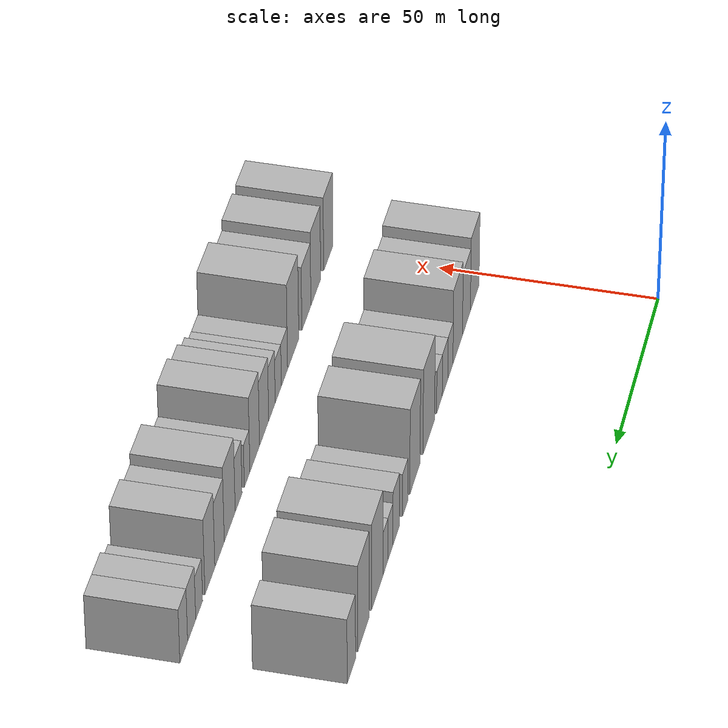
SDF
<sdf version="1.6">
 <world name="default">
  <model name="building_35">
   <static>1</static>
   <pose>50.0000 8.7507 0 0.000000 0.000000 0.000000</pose>
   <link name="link">
    <pose>0 0 10.50 0 0 0</pose>
    <collision name="collision"><geometry><box><size>20.0000 9.2780 21.0000</size></box></geometry></collision>
    <visual name="visual">
     <cast_shadows>0</cast_shadows>
     <geometry><box><size>20.0000 9.2780 21.0000</size></box></geometry>
     <material>
      <script>
       <uri>model://HANNAS_wall/materials/scripts</uri>
       <uri>model://HANNAS_wall/materials/textures</uri>
       <name>vrc/HANNAS_wall</name>
      </script>
     </material>
    </visual>
   </link>
  </model>
  <model name="building_36">
   <static>1</static>
   <pose>50.0000 17.6079 0 0.000000 0.000000 0.000000</pose>
   <link name="link">
    <pose>0 0 9.00 0 0 0</pose>
    <collision name="collision"><geometry><box><size>20.0000 8.4364 18.0000</size></box></geometry></collision>
    <visual name="visual">
     <cast_shadows>0</cast_shadows>
     <geometry><box><size>20.0000 8.4364 18.0000</size></box></geometry>
     <material>
      <script>
       <uri>model://HANNAS_wall/materials/scripts</uri>
       <uri>model://HANNAS_wall/materials/textures</uri>
       <name>vrc/HANNAS_wall</name>
      </script>
     </material>
    </visual>
   </link>
  </model>
  <model name="building_37">
   <static>1</static>
   <pose>50.0000 26.8337 0 0.000000 0.000000 0.000000</pose>
   <link name="link">
    <pose>0 0 10.50 0 0 0</pose>
    <collision name="collision"><geometry><box><size>20.0000 10.0153 21.0000</size></box></geometry></collision>
    <visual name="visual">
     <cast_shadows>0</cast_shadows>
     <geometry><box><size>20.0000 10.0153 21.0000</size></box></geometry>
     <material>
      <script>
       <uri>model://HANNAS_wall/materials/scripts</uri>
       <uri>model://HANNAS_wall/materials/textures</uri>
       <name>vrc/HANNAS_wall</name>
      </script>
     </material>
    </visual>
   </link>
  </model>
  <model name="building_38">
   <static>1</static>
   <pose>50.0000 34.4744 0 0.000000 0.000000 0.000000</pose>
   <link name="link">
    <pose>0 0 6.00 0 0 0</pose>
    <collision name="collision"><geometry><box><size>20.0000 5.2660 12.0000</size></box></geometry></collision>
    <visual name="visual">
     <cast_shadows>0</cast_shadows>
     <geometry><box><size>20.0000 5.2660 12.0000</size></box></geometry>
     <material>
      <script>
       <uri>model://HANNAS_wall/materials/scripts</uri>
       <uri>model://HANNAS_wall/materials/textures</uri>
       <name>vrc/HANNAS_wall</name>
      </script>
     </material>
    </visual>
   </link>
  </model>
  <model name="building_39">
   <static>1</static>
   <pose>50.0000 40.0444 0 0.000000 0.000000 0.000000</pose>
   <link name="link">
    <pose>0 0 6.00 0 0 0</pose>
    <collision name="collision"><geometry><box><size>20.0000 5.8741 12.0000</size></box></geometry></collision>
    <visual name="visual">
     <cast_shadows>0</cast_shadows>
     <geometry><box><size>20.0000 5.8741 12.0000</size></box></geometry>
     <material>
      <script>
       <uri>model://HANNAS_wall/materials/scripts</uri>
       <uri>model://HANNAS_wall/materials/textures</uri>
       <name>vrc/HANNAS_wall</name>
      </script>
     </material>
    </visual>
   </link>
  </model>
  <model name="building_40">
   <static>1</static>
   <pose>50.0000 45.8900 0 0.000000 0.000000 0.000000</pose>
   <link name="link">
    <pose>0 0 6.00 0 0 0</pose>
    <collision name="collision"><geometry><box><size>20.0000 5.8171 12.0000</size></box></geometry></collision>
    <visual name="visual">
     <cast_shadows>0</cast_shadows>
     <geometry><box><size>20.0000 5.8171 12.0000</size></box></geometry>
     <material>
      <script>
       <uri>model://HANNAS_wall/materials/scripts</uri>
       <uri>model://HANNAS_wall/materials/textures</uri>
       <name>vrc/HANNAS_wall</name>
      </script>
     </material>
    </visual>
   </link>
  </model>
  <model name="building_41">
   <static>1</static>
   <pose>50.0000 56.6589 0 0.000000 0.000000 0.000000</pose>
   <link name="link">
    <pose>0 0 12.00 0 0 0</pose>
    <collision name="collision"><geometry><box><size>20.0000 11.7206 24.0000</size></box></geometry></collision>
    <visual name="visual">
     <cast_shadows>0</cast_shadows>
     <geometry><box><size>20.0000 11.7206 24.0000</size></box></geometry>
     <material>
      <script>
       <uri>model://HANNAS_wall/materials/scripts</uri>
       <uri>model://HANNAS_wall/materials/textures</uri>
       <name>vrc/HANNAS_wall</name>
      </script>
     </material>
    </visual>
   </link>
  </model>
  <model name="building_42">
   <static>1</static>
   <pose>50.0000 70.6065 0 0.000000 0.000000 0.000000</pose>
   <link name="link">
    <pose>0 0 12.00 0 0 0</pose>
    <collision name="collision"><geometry><box><size>20.0000 10.1746 24.0000</size></box></geometry></collision>
    <visual name="visual">
     <cast_shadows>0</cast_shadows>
     <geometry><box><size>20.0000 10.1746 24.0000</size></box></geometry>
     <material>
      <script>
       <uri>model://HANNAS_wall/materials/scripts</uri>
       <uri>model://HANNAS_wall/materials/textures</uri>
       <name>vrc/HANNAS_wall</name>
      </script>
     </material>
    </visual>
   </link>
  </model>
  <model name="building_43">
   <static>1</static>
   <pose>50.0000 80.3176 0 0.000000 0.000000 0.000000</pose>
   <link name="link">
    <pose>0 0 6.00 0 0 0</pose>
    <collision name="collision"><geometry><box><size>20.0000 5.2476 12.0000</size></box></geometry></collision>
    <visual name="visual">
     <cast_shadows>0</cast_shadows>
     <geometry><box><size>20.0000 5.2476 12.0000</size></box></geometry>
     <material>
      <script>
       <uri>model://HANNAS_wall/materials/scripts</uri>
       <uri>model://HANNAS_wall/materials/textures</uri>
       <name>vrc/HANNAS_wall</name>
      </script>
     </material>
    </visual>
   </link>
  </model>
  <model name="building_44">
   <static>1</static>
   <pose>50.0000 89.0435 0 0.000000 0.000000 0.000000</pose>
   <link name="link">
    <pose>0 0 7.50 0 0 0</pose>
    <collision name="collision"><geometry><box><size>20.0000 6.2043 15.0000</size></box></geometry></collision>
    <visual name="visual">
     <cast_shadows>0</cast_shadows>
     <geometry><box><size>20.0000 6.2043 15.0000</size></box></geometry>
     <material>
      <script>
       <uri>model://HANNAS_wall/materials/scripts</uri>
       <uri>model://HANNAS_wall/materials/textures</uri>
       <name>vrc/HANNAS_wall</name>
      </script>
     </material>
    </visual>
   </link>
  </model>
  <model name="building_45">
   <static>1</static>
   <pose>50.0000 94.5717 0 0.000000 0.000000 0.000000</pose>
   <link name="link">
    <pose>0 0 6.00 0 0 0</pose>
    <collision name="collision"><geometry><box><size>20.0000 4.8520 12.0000</size></box></geometry></collision>
    <visual name="visual">
     <cast_shadows>0</cast_shadows>
     <geometry><box><size>20.0000 4.8520 12.0000</size></box></geometry>
     <material>
      <script>
       <uri>model://HANNAS_wall/materials/scripts</uri>
       <uri>model://HANNAS_wall/materials/textures</uri>
       <name>vrc/HANNAS_wall</name>
      </script>
     </material>
    </visual>
   </link>
  </model>
  <model name="building_46">
   <static>1</static>
   <pose>50.0000 99.4362 0 0.000000 0.000000 0.000000</pose>
   <link name="link">
    <pose>0 0 6.00 0 0 0</pose>
    <collision name="collision"><geometry><box><size>20.0000 4.8771 12.0000</size></box></geometry></collision>
    <visual name="visual">
     <cast_shadows>0</cast_shadows>
     <geometry><box><size>20.0000 4.8771 12.0000</size></box></geometry>
     <material>
      <script>
       <uri>model://HANNAS_wall/materials/scripts</uri>
       <uri>model://HANNAS_wall/materials/textures</uri>
       <name>vrc/HANNAS_wall</name>
      </script>
     </material>
    </visual>
   </link>
  </model>
  <model name="building_47">
   <static>1</static>
   <pose>50.0000 107.2916 0 0.000000 0.000000 0.000000</pose>
   <link name="link">
    <pose>0 0 12.00 0 0 0</pose>
    <collision name="collision"><geometry><box><size>20.0000 10.8336 24.0000</size></box></geometry></collision>
    <visual name="visual">
     <cast_shadows>0</cast_shadows>
     <geometry><box><size>20.0000 10.8336 24.0000</size></box></geometry>
     <material>
      <script>
       <uri>model://HANNAS_wall/materials/scripts</uri>
       <uri>model://HANNAS_wall/materials/textures</uri>
       <name>vrc/HANNAS_wall</name>
      </script>
     </material>
    </visual>
   </link>
  </model>
  <model name="building_48">
   <static>1</static>
   <pose>50.0000 120.1184 0 0.000000 0.000000 0.000000</pose>
   <link name="link">
    <pose>0 0 12.00 0 0 0</pose>
    <collision name="collision"><geometry><box><size>20.0000 10.8199 24.0000</size></box></geometry></collision>
    <visual name="visual">
     <cast_shadows>0</cast_shadows>
     <geometry><box><size>20.0000 10.8199 24.0000</size></box></geometry>
     <material>
      <script>
       <uri>model://HANNAS_wall/materials/scripts</uri>
       <uri>model://HANNAS_wall/materials/textures</uri>
       <name>vrc/HANNAS_wall</name>
      </script>
     </material>
    </visual>
   </link>
  </model>
  <model name="building_49">
   <static>1</static>
   <pose>50.0000 131.3602 0 0.000000 0.000000 0.000000</pose>
   <link name="link">
    <pose>0 0 9.00 0 0 0</pose>
    <collision name="collision"><geometry><box><size>20.0000 7.6637 18.0000</size></box></geometry></collision>
    <visual name="visual">
     <cast_shadows>0</cast_shadows>
     <geometry><box><size>20.0000 7.6637 18.0000</size></box></geometry>
     <material>
      <script>
       <uri>model://HANNAS_wall/materials/scripts</uri>
       <uri>model://HANNAS_wall/materials/textures</uri>
       <name>vrc/HANNAS_wall</name>
      </script>
     </material>
    </visual>
   </link>
  </model>
  <model name="building_97">
   <static>1</static>
   <pose>85.0000 2.1428 0 0.000000 0.000000 0.000000</pose>
   <link name="link">
    <pose>0 0 10.50 0 0 0</pose>
    <collision name="collision"><geometry><box><size>20.0000 9.1872 21.0000</size></box></geometry></collision>
    <visual name="visual">
     <cast_shadows>0</cast_shadows>
     <geometry><box><size>20.0000 9.1872 21.0000</size></box></geometry>
     <material>
      <script>
       <uri>model://HANNAS_wall/materials/scripts</uri>
       <uri>model://HANNAS_wall/materials/textures</uri>
       <name>vrc/HANNAS_wall</name>
      </script>
     </material>
    </visual>
   </link>
  </model>
  <model name="building_98">
   <static>1</static>
   <pose>85.0000 14.4837 0 0.000000 0.000000 0.000000</pose>
   <link name="link">
    <pose>0 0 10.50 0 0 0</pose>
    <collision name="collision"><geometry><box><size>20.0000 9.4946 21.0000</size></box></geometry></collision>
    <visual name="visual">
     <cast_shadows>0</cast_shadows>
     <geometry><box><size>20.0000 9.4946 21.0000</size></box></geometry>
     <material>
      <script>
       <uri>model://HANNAS_wall/materials/scripts</uri>
       <uri>model://HANNAS_wall/materials/textures</uri>
       <name>vrc/HANNAS_wall</name>
      </script>
     </material>
    </visual>
   </link>
  </model>
  <model name="building_99">
   <static>1</static>
   <pose>85.0000 23.5732 0 0.000000 0.000000 0.000000</pose>
   <link name="link">
    <pose>0 0 9.00 0 0 0</pose>
    <collision name="collision"><geometry><box><size>20.0000 8.6843 18.0000</size></box></geometry></collision>
    <visual name="visual">
     <cast_shadows>0</cast_shadows>
     <geometry><box><size>20.0000 8.6843 18.0000</size></box></geometry>
     <material>
      <script>
       <uri>model://HANNAS_wall/materials/scripts</uri>
       <uri>model://HANNAS_wall/materials/textures</uri>
       <name>vrc/HANNAS_wall</name>
      </script>
     </material>
    </visual>
   </link>
  </model>
  <model name="building_100">
   <static>1</static>
   <pose>85.0000 36.2213 0 0.000000 0.000000 0.000000</pose>
   <link name="link">
    <pose>0 0 12.00 0 0 0</pose>
    <collision name="collision"><geometry><box><size>20.0000 10.6118 24.0000</size></box></geometry></collision>
    <visual name="visual">
     <cast_shadows>0</cast_shadows>
     <geometry><box><size>20.0000 10.6118 24.0000</size></box></geometry>
     <material>
      <script>
       <uri>model://HANNAS_wall/materials/scripts</uri>
       <uri>model://HANNAS_wall/materials/textures</uri>
       <name>vrc/HANNAS_wall</name>
      </script>
     </material>
    </visual>
   </link>
  </model>
  <model name="building_101">
   <static>1</static>
   <pose>85.0000 44.4388 0 0.000000 0.000000 0.000000</pose>
   <link name="link">
    <pose>0 0 6.00 0 0 0</pose>
    <collision name="collision"><geometry><box><size>20.0000 5.8232 12.0000</size></box></geometry></collision>
    <visual name="visual">
     <cast_shadows>0</cast_shadows>
     <geometry><box><size>20.0000 5.8232 12.0000</size></box></geometry>
     <material>
      <script>
       <uri>model://HANNAS_wall/materials/scripts</uri>
       <uri>model://HANNAS_wall/materials/textures</uri>
       <name>vrc/HANNAS_wall</name>
      </script>
     </material>
    </visual>
   </link>
  </model>
  <model name="building_102">
   <static>1</static>
   <pose>85.0000 50.2223 0 0.000000 0.000000 0.000000</pose>
   <link name="link">
    <pose>0 0 6.00 0 0 0</pose>
    <collision name="collision"><geometry><box><size>20.0000 5.7438 12.0000</size></box></geometry></collision>
    <visual name="visual">
     <cast_shadows>0</cast_shadows>
     <geometry><box><size>20.0000 5.7438 12.0000</size></box></geometry>
     <material>
      <script>
       <uri>model://HANNAS_wall/materials/scripts</uri>
       <uri>model://HANNAS_wall/materials/textures</uri>
       <name>vrc/HANNAS_wall</name>
      </script>
     </material>
    </visual>
   </link>
  </model>
  <model name="building_103">
   <static>1</static>
   <pose>85.0000 56.1045 0 0.000000 0.000000 0.000000</pose>
   <link name="link">
    <pose>0 0 7.50 0 0 0</pose>
    <collision name="collision"><geometry><box><size>20.0000 6.0206 15.0000</size></box></geometry></collision>
    <visual name="visual">
     <cast_shadows>0</cast_shadows>
     <geometry><box><size>20.0000 6.0206 15.0000</size></box></geometry>
     <material>
      <script>
       <uri>model://HANNAS_wall/materials/scripts</uri>
       <uri>model://HANNAS_wall/materials/textures</uri>
       <name>vrc/HANNAS_wall</name>
      </script>
     </material>
    </visual>
   </link>
  </model>
  <model name="building_104">
   <static>1</static>
   <pose>85.0000 63.3136 0 0.000000 0.000000 0.000000</pose>
   <link name="link">
    <pose>0 0 9.00 0 0 0</pose>
    <collision name="collision"><geometry><box><size>20.0000 8.3978 18.0000</size></box></geometry></collision>
    <visual name="visual">
     <cast_shadows>0</cast_shadows>
     <geometry><box><size>20.0000 8.3978 18.0000</size></box></geometry>
     <material>
      <script>
       <uri>model://HANNAS_wall/materials/scripts</uri>
       <uri>model://HANNAS_wall/materials/textures</uri>
       <name>vrc/HANNAS_wall</name>
      </script>
     </material>
    </visual>
   </link>
  </model>
  <model name="building_105">
   <static>1</static>
   <pose>85.0000 71.8648 0 0.000000 0.000000 0.000000</pose>
   <link name="link">
    <pose>0 0 10.50 0 0 0</pose>
    <collision name="collision"><geometry><box><size>20.0000 8.7046 21.0000</size></box></geometry></collision>
    <visual name="visual">
     <cast_shadows>0</cast_shadows>
     <geometry><box><size>20.0000 8.7046 21.0000</size></box></geometry>
     <material>
      <script>
       <uri>model://HANNAS_wall/materials/scripts</uri>
       <uri>model://HANNAS_wall/materials/textures</uri>
       <name>vrc/HANNAS_wall</name>
      </script>
     </material>
    </visual>
   </link>
  </model>
  <model name="building_106">
   <static>1</static>
   <pose>85.0000 78.7348 0 0.000000 0.000000 0.000000</pose>
   <link name="link">
    <pose>0 0 6.00 0 0 0</pose>
    <collision name="collision"><geometry><box><size>20.0000 5.0354 12.0000</size></box></geometry></collision>
    <visual name="visual">
     <cast_shadows>0</cast_shadows>
     <geometry><box><size>20.0000 5.0354 12.0000</size></box></geometry>
     <material>
      <script>
       <uri>model://HANNAS_wall/materials/scripts</uri>
       <uri>model://HANNAS_wall/materials/textures</uri>
       <name>vrc/HANNAS_wall</name>
      </script>
     </material>
    </visual>
   </link>
  </model>
  <model name="building_107">
   <static>1</static>
   <pose>85.0000 86.2982 0 0.000000 0.000000 0.000000</pose>
   <link name="link">
    <pose>0 0 7.50 0 0 0</pose>
    <collision name="collision"><geometry><box><size>20.0000 6.0913 15.0000</size></box></geometry></collision>
    <visual name="visual">
     <cast_shadows>0</cast_shadows>
     <geometry><box><size>20.0000 6.0913 15.0000</size></box></geometry>
     <material>
      <script>
       <uri>model://HANNAS_wall/materials/scripts</uri>
       <uri>model://HANNAS_wall/materials/textures</uri>
       <name>vrc/HANNAS_wall</name>
      </script>
     </material>
    </visual>
   </link>
  </model>
  <model name="building_108">
   <static>1</static>
   <pose>85.0000 94.1602 0 0.000000 0.000000 0.000000</pose>
   <link name="link">
    <pose>0 0 10.50 0 0 0</pose>
    <collision name="collision"><geometry><box><size>20.0000 9.6328 21.0000</size></box></geometry></collision>
    <visual name="visual">
     <cast_shadows>0</cast_shadows>
     <geometry><box><size>20.0000 9.6328 21.0000</size></box></geometry>
     <material>
      <script>
       <uri>model://HANNAS_wall/materials/scripts</uri>
       <uri>model://HANNAS_wall/materials/textures</uri>
       <name>vrc/HANNAS_wall</name>
      </script>
     </material>
    </visual>
   </link>
  </model>
  <model name="building_109">
   <static>1</static>
   <pose>85.0000 103.0682 0 0.000000 0.000000 0.000000</pose>
   <link name="link">
    <pose>0 0 9.00 0 0 0</pose>
    <collision name="collision"><geometry><box><size>20.0000 8.1831 18.0000</size></box></geometry></collision>
    <visual name="visual">
     <cast_shadows>0</cast_shadows>
     <geometry><box><size>20.0000 8.1831 18.0000</size></box></geometry>
     <material>
      <script>
       <uri>model://HANNAS_wall/materials/scripts</uri>
       <uri>model://HANNAS_wall/materials/textures</uri>
       <name>vrc/HANNAS_wall</name>
      </script>
     </material>
    </visual>
   </link>
  </model>
  <model name="building_110">
   <static>1</static>
   <pose>85.0000 111.4145 0 0.000000 0.000000 0.000000</pose>
   <link name="link">
    <pose>0 0 10.50 0 0 0</pose>
    <collision name="collision"><geometry><box><size>20.0000 8.5095 21.0000</size></box></geometry></collision>
    <visual name="visual">
     <cast_shadows>0</cast_shadows>
     <geometry><box><size>20.0000 8.5095 21.0000</size></box></geometry>
     <material>
      <script>
       <uri>model://HANNAS_wall/materials/scripts</uri>
       <uri>model://HANNAS_wall/materials/textures</uri>
       <name>vrc/HANNAS_wall</name>
      </script>
     </material>
    </visual>
   </link>
  </model>
  <model name="building_111">
   <static>1</static>
   <pose>85.0000 120.5958 0 0.000000 0.000000 0.000000</pose>
   <link name="link">
    <pose>0 0 6.00 0 0 0</pose>
    <collision name="collision"><geometry><box><size>20.0000 5.8531 12.0000</size></box></geometry></collision>
    <visual name="visual">
     <cast_shadows>0</cast_shadows>
     <geometry><box><size>20.0000 5.8531 12.0000</size></box></geometry>
     <material>
      <script>
       <uri>model://HANNAS_wall/materials/scripts</uri>
       <uri>model://HANNAS_wall/materials/textures</uri>
       <name>vrc/HANNAS_wall</name>
      </script>
     </material>
    </visual>
   </link>
  </model>
  <model name="building_112">
   <static>1</static>
   <pose>85.0000 126.9229 0 0.000000 0.000000 0.000000</pose>
   <link name="link">
    <pose>0 0 7.50 0 0 0</pose>
    <collision name="collision"><geometry><box><size>20.0000 6.8013 15.0000</size></box></geometry></collision>
    <visual name="visual">
     <cast_shadows>0</cast_shadows>
     <geometry><box><size>20.0000 6.8013 15.0000</size></box></geometry>
     <material>
      <script>
       <uri>model://HANNAS_wall/materials/scripts</uri>
       <uri>model://HANNAS_wall/materials/textures</uri>
       <name>vrc/HANNAS_wall</name>
      </script>
     </material>
    </visual>
   </link>
  </model>
  <model name="building_113">
   <static>1</static>
   <pose>85.0000 133.5734 0 0.000000 0.000000 0.000000</pose>
   <link name="link">
    <pose>0 0 7.50 0 0 0</pose>
    <collision name="collision"><geometry><box><size>20.0000 6.4997 15.0000</size></box></geometry></collision>
    <visual name="visual">
     <cast_shadows>0</cast_shadows>
     <geometry><box><size>20.0000 6.4997 15.0000</size></box></geometry>
     <material>
      <script>
       <uri>model://HANNAS_wall/materials/scripts</uri>
       <uri>model://HANNAS_wall/materials/textures</uri>
       <name>vrc/HANNAS_wall</name>
      </script>
     </material>
    </visual>
   </link>
  </model>
 </world>
</sdf>
